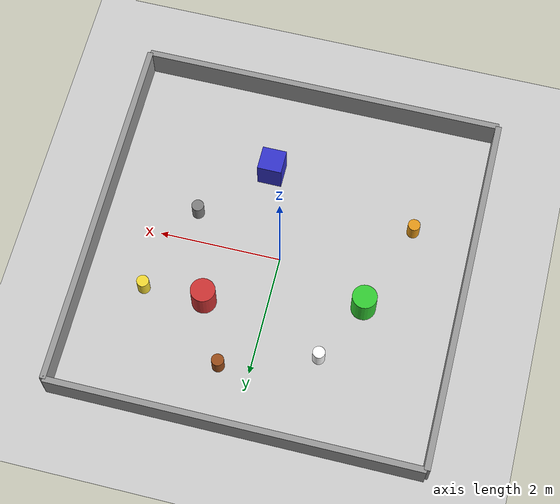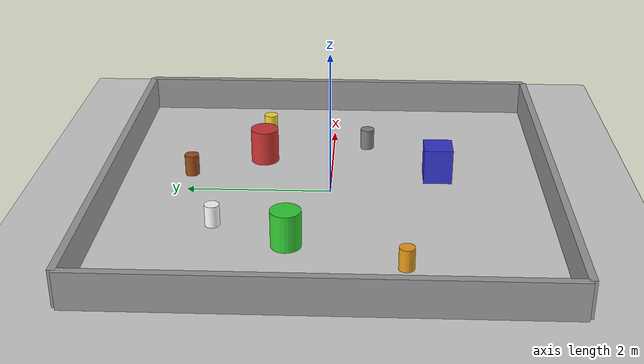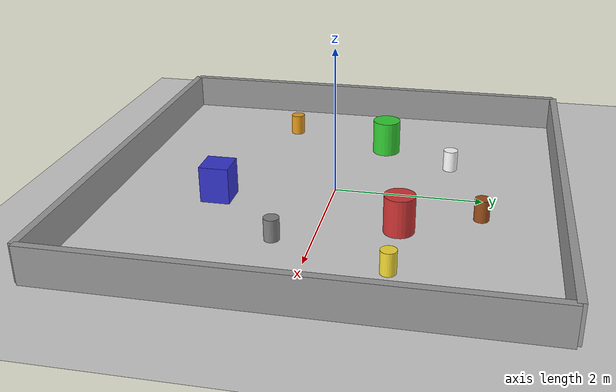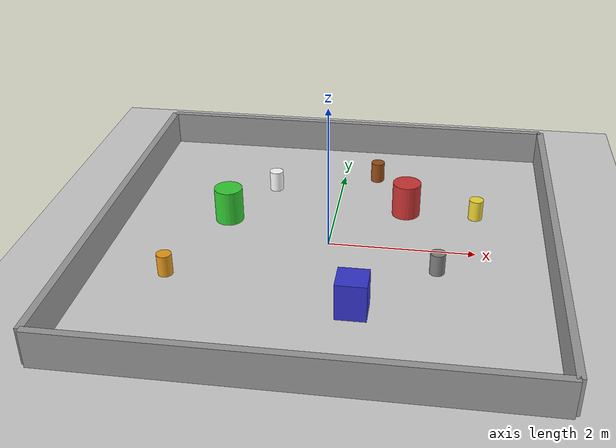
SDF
<!-- /mnt/nvme/ros2_ws/src/swarm_arena/worlds/arena.world -->
<?xml version="1.0" ?>
<sdf version="1.6">
  <world name="arena">
    <plugin name="gazebo_ros_state" filename="libgazebo_ros_state.so">
        <ros>
            <namespace>/gazebo</namespace>
        </ros>
        <update_rate>10.0</update_rate>
    </plugin>
    <include><uri>model://sun</uri></include>
    <include><uri>model://ground_plane</uri></include>

    <physics type="ode">
      <real_time_update_rate>1000.0</real_time_update_rate>
      <max_step_size>0.001</max_step_size>
      <real_time_factor>1</real_time_factor>
    </physics>

    <!-- 4 muri perimetrali, arena 6x6m centrata su origine -->
    <model name="wall_north">
      <static>true</static><pose>0 3 0.25 0 0 0</pose>
      <link name="link">
        <collision name="c"><geometry><box><size>6 0.1 0.5</size></box></geometry></collision>
        <visual name="v"><geometry><box><size>6 0.1 0.5</size></box></geometry>
          <material><ambient>0.6 0.6 0.6 1</ambient><diffuse>0.6 0.6 0.6 1</diffuse></material></visual>
      </link>
    </model>
    <model name="wall_south">
      <static>true</static><pose>0 -3 0.25 0 0 0</pose>
      <link name="link">
        <collision name="c"><geometry><box><size>6 0.1 0.5</size></box></geometry></collision>
        <visual name="v"><geometry><box><size>6 0.1 0.5</size></box></geometry>
          <material><ambient>0.6 0.6 0.6 1</ambient><diffuse>0.6 0.6 0.6 1</diffuse></material></visual>
      </link>
    </model>
    <model name="wall_east">
      <static>true</static><pose>3 0 0.25 0 0 0</pose>
      <link name="link">
        <collision name="c"><geometry><box><size>0.1 6 0.5</size></box></geometry></collision>
        <visual name="v"><geometry><box><size>0.1 6 0.5</size></box></geometry>
          <material><ambient>0.6 0.6 0.6 1</ambient><diffuse>0.6 0.6 0.6 1</diffuse></material></visual>
      </link>
    </model>
    <model name="wall_west">
      <static>true</static><pose>-3 0 0.25 0 0 0</pose>
      <link name="link">
        <collision name="c"><geometry><box><size>0.1 6 0.5</size></box></geometry></collision>
        <visual name="v"><geometry><box><size>0.1 6 0.5</size></box></geometry>
          <material><ambient>0.6 0.6 0.6 1</ambient><diffuse>0.6 0.6 0.6 1</diffuse></material></visual>
      </link>
    </model>

    <!-- 3 ostacoli statici -->
    <model name="obstacle_1">
      <static>true</static><pose>1.0 1.0 0.25 0 0 0</pose>
      <link name="link">
        <collision name="c"><geometry><cylinder><radius>0.2</radius><length>0.5</length></cylinder></geometry></collision>
        <visual name="v"><geometry><cylinder><radius>0.2</radius><length>0.5</length></cylinder></geometry>
          <material><ambient>0.8 0.2 0.2 1</ambient><diffuse>0.8 0.2 0.2 1</diffuse></material></visual>
      </link>
    </model>
    <model name="obstacle_2">
      <static>true</static><pose>-1.5 0.5 0.25 0 0 0</pose>
      <link name="link">
        <collision name="c"><geometry><cylinder><radius>0.2</radius><length>0.5</length></cylinder></geometry></collision>
        <visual name="v"><geometry><cylinder><radius>0.2</radius><length>0.5</length></cylinder></geometry>
          <material><ambient>0.2 0.8 0.2 1</ambient><diffuse>0.2 0.8 0.2 1</diffuse></material></visual>
      </link>
    </model>
    <model name="obstacle_3">
      <static>true</static><pose>0.5 -1.5 0.25 0 0 0</pose>
      <link name="link">
        <collision name="c"><geometry><box><size>0.4 0.4 0.5</size></box></geometry></collision>
        <visual name="v"><geometry><box><size>0.4 0.4 0.5</size></box></geometry>
          <material><ambient>0.2 0.2 0.8 1</ambient><diffuse>0.2 0.2 0.8 1</diffuse></material></visual>
      </link>
    </model>
    <!-- Target robots: 5 animali, ogni colore = una specie -->
    <model name="target_elephant">
      <pose>1.5 -0.5 0.15 0 0 0</pose>
      <link name="link">
        <inertial><mass>0.5</mass>
          <inertia><ixx>0.01</ixx><iyy>0.01</iyy><izz>0.01</izz>
            <ixy>0</ixy><ixz>0</ixz><iyz>0</iyz></inertia>
        </inertial>
        <collision name="c"><geometry><cylinder><radius>0.1</radius><length>0.3</length></cylinder></geometry></collision>
        <visual name="v"><geometry><cylinder><radius>0.1</radius><length>0.3</length></cylinder></geometry>
          <material><ambient>0.5 0.5 0.5 1</ambient><diffuse>0.5 0.5 0.5 1</diffuse></material></visual>
      </link>
    </model>
    <model name="target_zebra">
      <pose>-1.0 1.5 0.15 0 0 0</pose>
      <link name="link">
        <inertial><mass>0.5</mass>
          <inertia><ixx>0.01</ixx><iyy>0.01</iyy><izz>0.01</izz>
            <ixy>0</ixy><ixz>0</ixz><iyz>0</iyz></inertia>
        </inertial>
        <collision name="c"><geometry><cylinder><radius>0.1</radius><length>0.3</length></cylinder></geometry></collision>
        <visual name="v"><geometry><cylinder><radius>0.1</radius><length>0.3</length></cylinder></geometry>
          <material><ambient>1.0 1.0 1.0 1</ambient><diffuse>1.0 1.0 1.0 1</diffuse></material></visual>
      </link>
    </model>
    <model name="target_giraffe">
      <pose>2.0 1.0 0.15 0 0 0</pose>
      <link name="link">
        <inertial><mass>0.5</mass>
          <inertia><ixx>0.01</ixx><iyy>0.01</iyy><izz>0.01</izz>
            <ixy>0</ixy><ixz>0</ixz><iyz>0</iyz></inertia>
        </inertial>
        <collision name="c"><geometry><cylinder><radius>0.1</radius><length>0.3</length></cylinder></geometry></collision>
        <visual name="v"><geometry><cylinder><radius>0.1</radius><length>0.3</length></cylinder></geometry>
          <material><ambient>0.95 0.85 0.2 1</ambient><diffuse>0.95 0.85 0.2 1</diffuse></material></visual>
      </link>
    </model>
    <model name="target_lion">
      <pose>-2.0 -1.0 0.15 0 0 0</pose>
      <link name="link">
        <inertial><mass>0.5</mass>
          <inertia><ixx>0.01</ixx><iyy>0.01</iyy><izz>0.01</izz>
            <ixy>0</ixy><ixz>0</ixz><iyz>0</iyz></inertia>
        </inertial>
        <collision name="c"><geometry><cylinder><radius>0.1</radius><length>0.3</length></cylinder></geometry></collision>
        <visual name="v"><geometry><cylinder><radius>0.1</radius><length>0.3</length></cylinder></geometry>
          <material><ambient>0.9 0.6 0.1 1</ambient><diffuse>0.9 0.6 0.1 1</diffuse></material></visual>
      </link>
    </model>
    <model name="target_antelope">
      <pose>0.5 2.0 0.15 0 0 0</pose>
      <link name="link">
        <inertial><mass>0.5</mass>
          <inertia><ixx>0.01</ixx><iyy>0.01</iyy><izz>0.01</izz>
            <ixy>0</ixy><ixz>0</ixz><iyz>0</iyz></inertia>
        </inertial>
        <collision name="c"><geometry><cylinder><radius>0.1</radius><length>0.3</length></cylinder></geometry></collision>
        <visual name="v"><geometry><cylinder><radius>0.1</radius><length>0.3</length></cylinder></geometry>
          <material><ambient>0.6 0.3 0.1 1</ambient><diffuse>0.6 0.3 0.1 1</diffuse></material></visual>
      </link>
    </model>

    <gui><camera name="user_camera"><pose>0 -8 6 0 0.6 1.5708</pose></camera></gui>
  </world>
</sdf>
